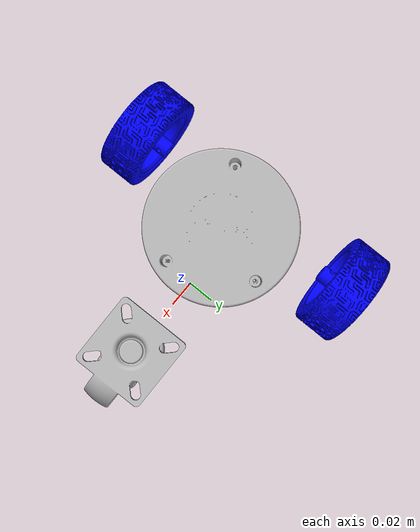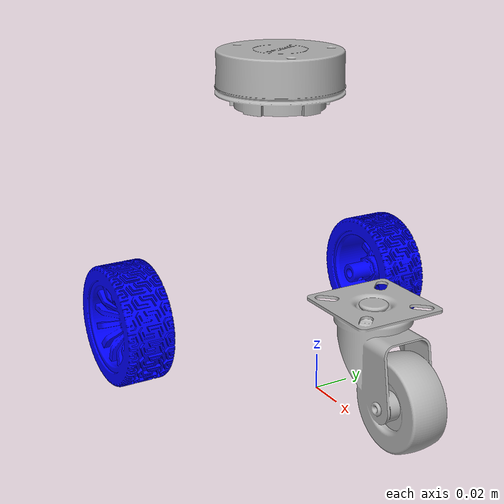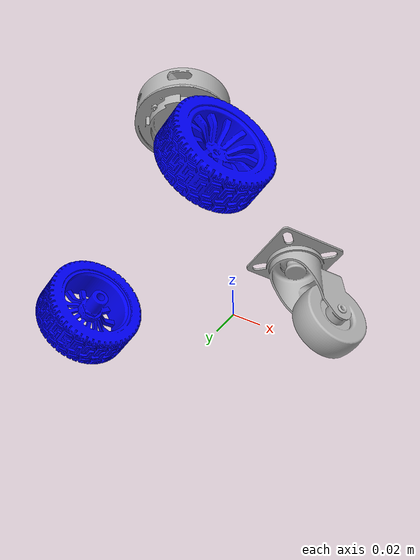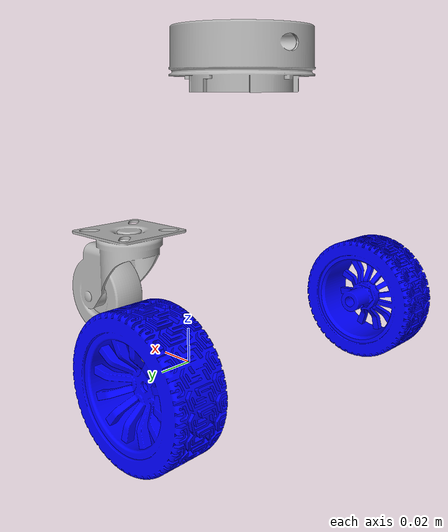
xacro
<?xml version="1.0" ?>
<robot name="turtlebot_urdf" xmlns:xacro="http://www.ros.org/wiki/xacro">

<xacro:include filename="$(find turtlebot)/urdf/materials.xacro" />
<xacro:include filename="$(find turtlebot)/urdf/turtlebot_urdf.trans" />
<xacro:include filename="$(find turtlebot)/urdf/turtlebot_urdf.gazebo" />
<xacro:include filename="$(find turtlebot)/urdf/ros2_control.xacro" />

<link name="base_link">
  <inertial>
    <origin xyz="-0.011892043852621992 -0.0005619831717906164 0.09178014322322671" rpy="0 0 0"/>
    <mass value="5.029194688421112"/>
    <inertia ixx="0.005252" iyy="0.008834" izz="0.00825" ixy="-8e-06" iyz="2e-06" ixz="-0.000662"/>
  </inertial>
  <visual>
    <origin xyz="0 0 0" rpy="0 0 0"/>
    <geometry>
      <mesh filename="file://$(find turtlebot)/meshes/base_link.stl" scale="0.001 0.001 0.001"/>
    </geometry>
    <material name="dark_grey"/>
  </visual>
  <collision>
    <origin xyz="0 0 0" rpy="0 0 0"/>
    <geometry>
      <mesh filename="file://$(find turtlebot)/meshes/base_link.stl" scale="0.001 0.001 0.001"/>
    </geometry>
  </collision>
</link>

<link name="wheel_2">
  <inertial>
    <origin xyz="0.06888830561351354 -0.023235974830111583 0.023835792094402966" rpy="0 0 0"/>
    <mass value="0.05"/>
   <inertia ixx="${(1/12) * 0.05 * (3*0.033*0.033 + 0.026*0.026)}" ixy="0.0" ixz="0.0"
                    iyy="${(1/12) * 0.05 * (3*0.033*0.033 + 0.026*0.026)}" iyz="0.0"
                    izz="${(1/12) * 0.05 * (0.033*0.033)}" />
  </inertial>
  <visual>
    <origin xyz="0.06353 0.0615 -0.034204" rpy="0 0 0"/>
    <geometry>
      <mesh filename="file://$(find turtlebot)/meshes/wheel_2.stl" scale="0.001 0.001 0.001"/>
    </geometry>
    <material name="blue"/>
  </visual>
  <collision>
    <origin xyz="0.06353 0.0615 -0.034204" rpy="0 0 0"/>
    <geometry>
      <mesh filename="file://$(find turtlebot)/meshes/wheel_2.stl" scale="0.001 0.001 0.001"/>
    </geometry>
  </collision>
</link>

<link name="wheel_1">
  <inertial>
    <origin xyz="3.056135131906945e-07 0.01829722739215528 -1.1901500950733945e-07" rpy="0 0 0"/>
    <mass value="0.05"/>
      <inertia ixx="${(1/12) * 0.05 * (3*0.033*0.033 + 0.026*0.026)}" ixy="0.0" ixz="0.0"
                    iyy="${(1/12) * 0.05 * (3*0.033*0.033 + 0.026*0.026)}" iyz="0.0"
                    izz="${(1/12) * 0.05 * (0.033*0.033)}" />
  </inertial>
  <visual>
    <origin xyz="0.06353 -0.065361 -0.034204" rpy="0 0 0"/>
    <geometry>
      <mesh filename="file://$(find turtlebot)/meshes/wheel_1.stl" scale="0.001 0.001 0.001"/>
    </geometry>
    <material name="blue"/>
  </visual>
  <collision>
    <origin xyz="0.06353 -0.065361 -0.034204" rpy="0 0 0"/>
    <geometry>
      <mesh filename="file://$(find turtlebot)/meshes/wheel_1.stl" scale="0.001 0.001 0.001"/>
    </geometry>
  </collision>
</link>

<link name="castor_1">
  <inertial>
    <origin xyz="0.01981118107895722 -4.379036331437309e-07 -0.0356085862227856" rpy="0 0 0"/>
    <mass value="0.04497681815229099"/>
    <inertia ixx="1.9e-05" iyy="2.7e-05" izz="1.4e-05" ixy="0.0" iyz="-0.0" ixz="7e-06"/>
  </inertial>
  <visual>
    <origin xyz="-0.05142 0.000539 -0.0695" rpy="0 0 0"/>
    <geometry>
      <mesh filename="file://$(find turtlebot)/meshes/castor_1.stl" scale="0.001 0.001 0.001"/>
    </geometry>
    <material name="silver"/>
  </visual>
  <collision>
    <origin xyz="-0.05142 0.000539 -0.0695" rpy="0 0 0"/>
    <geometry>
      <mesh filename="file://$(find turtlebot)/meshes/castor_1.stl" scale="0.001 0.001 0.001"/>
    </geometry>
  </collision>
</link>

<link name="rplidar_1">
  <inertial>
    <origin xyz="-0.0018050632757317456 -0.0013635449377829775 0.006379983654134419" rpy="0 0 0"/>
    <mass value="0.02197925742535277"/>
    <inertia ixx="1e-05" iyy="1e-05" izz="1.6e-05" ixy="-0.0" iyz="0.0" ixz="0.0"/>
  </inertial>
  <visual>
    <origin xyz="0.039624 0.000539 -0.161486" rpy="0 0 0"/>
    <geometry>
      <mesh filename="file://$(find turtlebot)/meshes/rplidar_1.stl" scale="0.001 0.001 0.001"/>
    </geometry>
    <material name="silver"/>
  </visual>
  <collision>
    <origin xyz="0.039624 0.000539 -0.161486" rpy="0 0 0"/>
    <geometry>
      <mesh filename="file://$(find turtlebot)/meshes/rplidar_1.stl" scale="0.001 0.001 0.001"/>
    </geometry>
  </collision>
</link>

<joint name="left_wheel_joint" type="continuous">
  <origin xyz="-0.06353 -0.0615 0.034204" rpy="0 0 0"/>
  <parent link="base_link"/>
  <child link="wheel_2"/>
  <axis xyz="-0.0 -1.0 -0.0"/>
</joint>

<joint name="right_wheel_joint" type="continuous">
  <origin xyz="-0.06353 0.065361 0.034204" rpy="0 0 0"/>
  <parent link="base_link"/>
  <child link="wheel_1"/>
  <axis xyz="-0.0 -1.0 0.0"/>
</joint>

<joint name="castor_joint" type="fixed">
  <origin xyz="0.05142 -0.000539 0.0695" rpy="0 0 0"/>
  <parent link="base_link"/>
  <child link="castor_1"/>
</joint>

<joint name="rplidar_joint" type="fixed">
  <origin xyz="-0.039624 -0.000539 0.161486" rpy="0 0 0"/>
  <parent link="base_link"/>
  <child link="rplidar_1"/>
</joint>

</robot>

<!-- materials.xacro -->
<robot name="turtlebot_urdf" xmlns:xacro="http://www.ros.org/wiki/xacro" >

<material name="silver">
  <color rgba="0.700 0.700 0.700 1.000"/>
</material>

<material name="black">
  <color rgba="0.000 0.000 0.000 1.000"/>
</material>

<material name="dark_grey">
  <color rgba="0.250 0.250 0.250 1.000"/>
</material>

<material name="red">
  <color rgba="1.000 0.000 0.000 1.000"/>
</material>

<material name="green">
  <color rgba="0.000 1.000 0.000 1.000"/>
</material>

<material name="blue">
  <color rgba="0.000 0.000 1.000 1.000"/>
</material>

<material name="yellow">
  <color rgba="1.000 1.000 0.000 1.000"/>
</material>

<material name="cyan">
  <color rgba="0.000 1.000 1.000 1.000"/>
</material>

<material name="magenta">
  <color rgba="1.000 0.000 1.000 1.000"/>
</material>

<material name="white">
  <color rgba="1.000 1.000 1.000 1.000"/>
</material>

<material name="orange">
  <color rgba="1.000 0.647 0.000 1.000"/>
</material>

<material name="purple">
  <color rgba="0.502 0.000 0.502 1.000"/>
</material>

<material name="brown">
  <color rgba="0.647 0.165 0.165 1.000"/>
</material>

<material name="pink">
  <color rgba="1.000 0.753 0.796 1.000"/>
</material>

<material name="lime">
  <color rgba="0.196 0.804 0.196 1.000"/>
</material>

<material name="navy">
  <color rgba="0.000 0.000 0.502 1.000"/>
</material>

<material name="olive">
  <color rgba="0.502 0.502 0.000 1.000"/>
</material>

<material name="maroon">
  <color rgba="0.502 0.000 0.000 1.000"/>
</material>

<material name="aqua">
  <color rgba="0.000 1.000 1.000 1.000"/>
</material>

<material name="teal">
  <color rgba="0.000 0.502 0.502 1.000"/>
</material>

</robot>

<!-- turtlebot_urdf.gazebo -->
<robot name="turtlebot_urdf" xmlns:xacro="http://www.ros.org/wiki/xacro" >

<xacro:property name="body_color" value="Gazebo/Silver" />

<gazebo>
  <plugin name="control" filename="libgazebo_ros_control.so"/>
</gazebo>
<gazebo reference="base_link">
  <material>${body_color}</material>
  <mu1>0.2</mu1>
  <mu2>0.2</mu2>
  <self_collide>true</self_collide>
  <gravity>true</gravity>
</gazebo>

<gazebo reference="wheel_2">
  <material>${body_color}</material>
  <mu1>10.0</mu1>
  <mu2>10.0</mu2>
  <self_collide>true</self_collide>
</gazebo>

<gazebo reference="wheel_1">
  <material>${body_color}</material>
  <mu1>10.0</mu1>
  <mu2>10.0</mu2>
  <self_collide>true</self_collide>
</gazebo>

<gazebo reference="castor_1">
  <material>${body_color}</material>
  <mu1>0.0</mu1>
  <mu2>0.0</mu2>
  <self_collide>true</self_collide>
</gazebo>

<gazebo reference="rplidar_1">
    <material>${body_color}</material>
    <mu1>0.2</mu1>
    <mu2>0.2</mu2>
    <self_collide>true</self_collide>

    <sensor name="laser" type="ray">
      <pose>0 0 0 0 0 0</pose>
      <visualize>false</visualize>
      <update_rate>10</update_rate>
      <ray>
        <scan>
          <horizontal>
            <samples>360</samples>
            <min_angle>-3.14</min_angle>
            <max_angle>3.14</max_angle>
          </horizontal>
        </scan>
        <range>
          <min>0.15</min>
          <max>12</max>
        </range>
      </ray>
      <plugin name="laser_controller" filename="libgazebo_ros_ray_sensor.so">
        <ros>
          <argument>~/out:=scan</argument>
        </ros>
        <output_type>sensor_msgs/LaserScan</output_type>
        <frame_name>rplidar_1</frame_name>
      </plugin>
    </sensor>
  </gazebo>

</robot>
